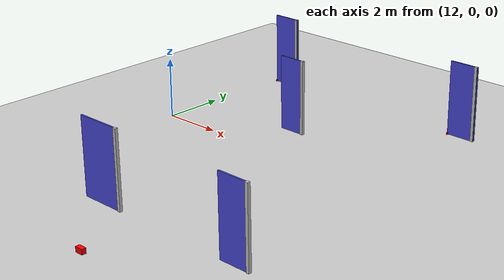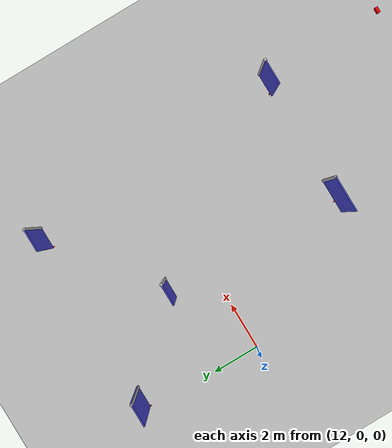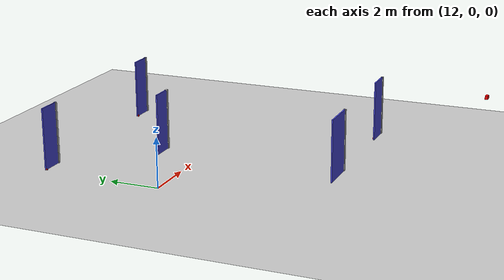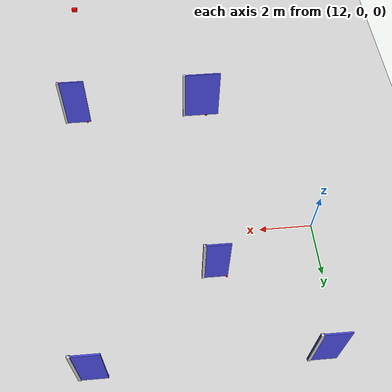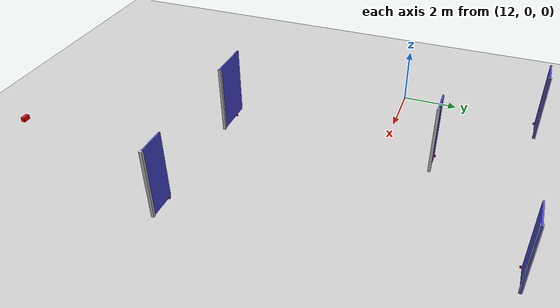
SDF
<sdf version="1.7">
 <world name="default">
  <model name="ground_plane">
   <static>1</static>
   <link name="link">
    <collision name="collision">
     <geometry><plane><normal>0 0 1</normal><size>100 100</size></plane></geometry>
     <surface><friction><ode><mu>100</mu><mu2>50</mu2></ode></friction></surface>
    </collision>
    <visual name="visual">
     <cast_shadows>0</cast_shadows>
     <geometry><plane><normal>0 0 1</normal><size>100 100</size></plane></geometry>
     <material>
      <script><uri>file://media/materials/scripts/gazebo.material</uri><name>Gazebo/Grey</name></script>
     </material>
    </visual>
   </link>
  </model>
  <model name="door_6">
   <link name="door_frame">
    <pose>0.25 0 1.25 0 -0 0</pose>
    <kinematic>1</kinematic>
    <inertial>
     <inertia><ixx>1</ixx><ixy>0</ixy><ixz>0</ixz><iyy>1</iyy><iyz>0</iyz><izz>1</izz></inertia>
     <mass>1</mass>
    </inertial>
    <visual name="frame_visual">
     <geometry><box><size>0.1 0.1 2.5</size></box></geometry>
     <material>
      <ambient>0.7 0.7 0.7 1</ambient>
      <diffuse>0.8 0.8 0.8 1</diffuse>
      <shader type="pixel"><normal_map>__default__</normal_map></shader>
      <script><name>ModelPreview_1::door_frame::frame_visual_MATERIAL_</name><uri>__default__</uri></script>
      <specular>0 0 0 1</specular>
      <emissive>0 0 0 1</emissive>
     </material>
    </visual>
    <collision name="frame_collision">
     <geometry><box><size>0.1 0.1 2.5</size></box></geometry>
     <surface>
      <friction>
       <ode><mu>1</mu><mu2>1</mu2><fdir1>0 0 0</fdir1><slip1>0</slip1><slip2>0</slip2></ode>
       <torsional>
        <coefficient>1</coefficient>
        <patch_radius>0</patch_radius>
        <surface_radius>0</surface_radius>
        <use_patch_radius>1</use_patch_radius>
        <ode><slip>0</slip></ode>
       </torsional>
      </friction>
      <bounce><restitution_coefficient>0</restitution_coefficient><threshold>1e+06</threshold></bounce>
      <contact>
       <collide_without_contact>0</collide_without_contact>
       <collide_without_contact_bitmask>1</collide_without_contact_bitmask>
       <collide_bitmask>1</collide_bitmask>
       <ode>
        <soft_cfm>0</soft_cfm>
        <soft_erp>0.2</soft_erp>
        <kp>1e+13</kp>
        <kd>1</kd>
        <max_vel>0.01</max_vel>
        <min_depth>0</min_depth>
       </ode>
       <bullet>
        <split_impulse>1</split_impulse>
        <split_impulse_penetration_threshold>-0.01</split_impulse_penetration_threshold>
        <soft_cfm>0</soft_cfm>
        <soft_erp>0.2</soft_erp>
        <kp>1e+13</kp>
        <kd>1</kd>
       </bullet>
      </contact>
     </surface>
    </collision>
   </link>
   <link name="door">
    <kinematic>1</kinematic>
    <pose>-0.259338 0 1.25 0 -0 0</pose>
    <inertial>
     <inertia><ixx>1.07451</ixx><ixy>0</ixy><ixz>0</ixz><iyy>1.25679</iyy><iyz>0</iyz><izz>0.18314</izz></inertia>
     <mass>2.06224</mass>
    </inertial>
    <visual name="door_visual">
     <geometry><box><size>1.0311 0.05 2.5</size></box></geometry>
     <material>
      <ambient>0.2 0.2 0.8 1</ambient>
      <diffuse>0.3 0.3 0.9 1</diffuse>
      <shader type="pixel"/>
      <script><name>ModelPreview_1::door::door_visual_MATERIAL_</name><uri>__default__</uri></script>
     </material>
    </visual>
    <collision name="door_collision">
     <geometry><box><size>1.0311 0.05 2.5</size></box></geometry>
     <surface>
      <friction>
       <ode><mu>1</mu><mu2>1</mu2><fdir1>0 0 0</fdir1><slip1>0</slip1><slip2>0</slip2></ode>
       <torsional>
        <coefficient>1</coefficient>
        <patch_radius>0</patch_radius>
        <surface_radius>0</surface_radius>
        <use_patch_radius>1</use_patch_radius>
        <ode><slip>0</slip></ode>
       </torsional>
      </friction>
      <bounce><restitution_coefficient>0</restitution_coefficient><threshold>1e+06</threshold></bounce>
      <contact>
       <collide_without_contact>0</collide_without_contact>
       <collide_without_contact_bitmask>1</collide_without_contact_bitmask>
       <collide_bitmask>1</collide_bitmask>
       <ode>
        <soft_cfm>0</soft_cfm>
        <soft_erp>0.2</soft_erp>
        <kp>1e+13</kp>
        <kd>1</kd>
        <max_vel>0.01</max_vel>
        <min_depth>0</min_depth>
       </ode>
       <bullet>
        <split_impulse>1</split_impulse>
        <split_impulse_penetration_threshold>-0.01</split_impulse_penetration_threshold>
        <soft_cfm>0</soft_cfm>
        <soft_erp>0.2</soft_erp>
        <kp>1e+13</kp>
        <kd>1</kd>
       </bullet>
      </contact>
     </surface>
    </collision>
   </link>
   <joint name="door_joint" type="prismatic">
    <parent>door_frame</parent>
    <child>door</child>
    <axis>
     <xyz>1 0 0</xyz>
     <limit><lower>0</lower><upper>2</upper><effort>-1</effort><velocity>-1</velocity></limit>
     <dynamics>
      <spring_reference>0</spring_reference>
      <spring_stiffness>0</spring_stiffness>
      <damping>0</damping>
      <friction>0</friction>
     </dynamics>
    </axis>
    <physics>
     <ode><limit><cfm>0</cfm><erp>0.2</erp></limit><suspension><cfm>0</cfm><erp>0.2</erp></suspension></ode>
    </physics>
   </joint>
   <static>0</static>
   <plugin name="door_control_plugin" filename="libdoor_control_plugin.so">
    <door_joint>door_joint</door_joint>
    <speed>1.0</speed>
    <open_target>1.0</open_target>
    <close_target>0.0</close_target>
   </plugin>
   <pose>21.1999 -5.82713 0 0 -0 0</pose>
  </model>
  <model name="door_5">
   <link name="door_frame">
    <pose>0.25 0 1.25 0 -0 0</pose>
    <kinematic>1</kinematic>
    <inertial>
     <inertia><ixx>1</ixx><ixy>0</ixy><ixz>0</ixz><iyy>1</iyy><iyz>0</iyz><izz>1</izz></inertia>
     <mass>1</mass>
    </inertial>
    <visual name="frame_visual">
     <geometry><box><size>0.1 0.1 2.5</size></box></geometry>
     <material>
      <ambient>0.7 0.7 0.7 1</ambient>
      <diffuse>0.8 0.8 0.8 1</diffuse>
      <shader type="pixel"><normal_map>__default__</normal_map></shader>
      <script><name>ModelPreview_1::door_frame::frame_visual_MATERIAL_</name><uri>__default__</uri></script>
      <specular>0 0 0 1</specular>
      <emissive>0 0 0 1</emissive>
     </material>
    </visual>
    <collision name="frame_collision">
     <geometry><box><size>0.1 0.1 2.5</size></box></geometry>
     <surface>
      <friction>
       <ode><mu>1</mu><mu2>1</mu2><fdir1>0 0 0</fdir1><slip1>0</slip1><slip2>0</slip2></ode>
       <torsional>
        <coefficient>1</coefficient>
        <patch_radius>0</patch_radius>
        <surface_radius>0</surface_radius>
        <use_patch_radius>1</use_patch_radius>
        <ode><slip>0</slip></ode>
       </torsional>
      </friction>
      <bounce><restitution_coefficient>0</restitution_coefficient><threshold>1e+06</threshold></bounce>
      <contact>
       <collide_without_contact>0</collide_without_contact>
       <collide_without_contact_bitmask>1</collide_without_contact_bitmask>
       <collide_bitmask>1</collide_bitmask>
       <ode>
        <soft_cfm>0</soft_cfm>
        <soft_erp>0.2</soft_erp>
        <kp>1e+13</kp>
        <kd>1</kd>
        <max_vel>0.01</max_vel>
        <min_depth>0</min_depth>
       </ode>
       <bullet>
        <split_impulse>1</split_impulse>
        <split_impulse_penetration_threshold>-0.01</split_impulse_penetration_threshold>
        <soft_cfm>0</soft_cfm>
        <soft_erp>0.2</soft_erp>
        <kp>1e+13</kp>
        <kd>1</kd>
       </bullet>
      </contact>
     </surface>
    </collision>
   </link>
   <link name="door">
    <kinematic>1</kinematic>
    <pose>-0.486434 0 1.25 0 -0 0</pose>
    <inertial>
     <inertia><ixx>1.55156</ixx><ixy>0</ixy><ixz>0</ixz><iyy>2.10104</iyy><iyz>0</iyz><izz>0.550719</izz></inertia>
     <mass>2.9778</mass>
    </inertial>
    <visual name="door_visual">
     <geometry><box><size>1.48889 0.05 2.5</size></box></geometry>
     <material>
      <ambient>0.2 0.2 0.8 1</ambient>
      <diffuse>0.3 0.3 0.9 1</diffuse>
      <shader type="pixel"/>
      <script><name>ModelPreview_1::door::door_visual_MATERIAL_</name><uri>__default__</uri></script>
     </material>
    </visual>
    <collision name="door_collision">
     <geometry><box><size>1.48889 0.05 2.5</size></box></geometry>
     <surface>
      <friction>
       <ode><mu>1</mu><mu2>1</mu2><fdir1>0 0 0</fdir1><slip1>0</slip1><slip2>0</slip2></ode>
       <torsional>
        <coefficient>1</coefficient>
        <patch_radius>0</patch_radius>
        <surface_radius>0</surface_radius>
        <use_patch_radius>1</use_patch_radius>
        <ode><slip>0</slip></ode>
       </torsional>
      </friction>
      <bounce><restitution_coefficient>0</restitution_coefficient><threshold>1e+06</threshold></bounce>
      <contact>
       <collide_without_contact>0</collide_without_contact>
       <collide_without_contact_bitmask>1</collide_without_contact_bitmask>
       <collide_bitmask>1</collide_bitmask>
       <ode>
        <soft_cfm>0</soft_cfm>
        <soft_erp>0.2</soft_erp>
        <kp>1e+13</kp>
        <kd>1</kd>
        <max_vel>0.01</max_vel>
        <min_depth>0</min_depth>
       </ode>
       <bullet>
        <split_impulse>1</split_impulse>
        <split_impulse_penetration_threshold>-0.01</split_impulse_penetration_threshold>
        <soft_cfm>0</soft_cfm>
        <soft_erp>0.2</soft_erp>
        <kp>1e+13</kp>
        <kd>1</kd>
       </bullet>
      </contact>
     </surface>
    </collision>
   </link>
   <joint name="door_joint" type="prismatic">
    <parent>door_frame</parent>
    <child>door</child>
    <axis>
     <xyz>1 0 0</xyz>
     <limit><lower>0</lower><upper>2</upper><effort>-1</effort><velocity>-1</velocity></limit>
     <dynamics>
      <spring_reference>0</spring_reference>
      <spring_stiffness>0</spring_stiffness>
      <damping>0</damping>
      <friction>0</friction>
     </dynamics>
    </axis>
    <physics>
     <ode><limit><cfm>0</cfm><erp>0.2</erp></limit><suspension><cfm>0</cfm><erp>0.2</erp></suspension></ode>
    </physics>
   </joint>
   <static>0</static>
   <plugin name="door_control_plugin" filename="libdoor_control_plugin.so">
    <door_joint>door_joint</door_joint>
    <speed>1.0</speed>
    <open_target>1.5</open_target>
    <close_target>0.0</close_target>
   </plugin>
   <pose>16.1524 -5.82237 0 0 -0 0</pose>
  </model>
  <model name="door_12">
   <link name="door_frame">
    <pose>0.25 0 1.25 0 -0 0</pose>
    <kinematic>1</kinematic>
    <inertial>
     <inertia><ixx>1</ixx><ixy>0</ixy><ixz>0</ixz><iyy>1</iyy><iyz>0</iyz><izz>1</izz></inertia>
     <mass>1</mass>
    </inertial>
    <visual name="frame_visual">
     <geometry><box><size>0.1 0.1 2.5</size></box></geometry>
     <material>
      <ambient>0.7 0.7 0.7 1</ambient>
      <diffuse>0.8 0.8 0.8 1</diffuse>
      <shader type="pixel"><normal_map>__default__</normal_map></shader>
      <script><name>ModelPreview_1::door_frame::frame_visual_MATERIAL_</name><uri>__default__</uri></script>
      <specular>0 0 0 1</specular>
      <emissive>0 0 0 1</emissive>
     </material>
    </visual>
    <collision name="frame_collision">
     <geometry><box><size>0.1 0.1 2.5</size></box></geometry>
     <surface>
      <friction>
       <ode><mu>1</mu><mu2>1</mu2><fdir1>0 0 0</fdir1><slip1>0</slip1><slip2>0</slip2></ode>
       <torsional>
        <coefficient>1</coefficient>
        <patch_radius>0</patch_radius>
        <surface_radius>0</surface_radius>
        <use_patch_radius>1</use_patch_radius>
        <ode><slip>0</slip></ode>
       </torsional>
      </friction>
      <bounce><restitution_coefficient>0</restitution_coefficient><threshold>1e+06</threshold></bounce>
      <contact>
       <collide_without_contact>0</collide_without_contact>
       <collide_without_contact_bitmask>1</collide_without_contact_bitmask>
       <collide_bitmask>1</collide_bitmask>
       <ode>
        <soft_cfm>0</soft_cfm>
        <soft_erp>0.2</soft_erp>
        <kp>1e+13</kp>
        <kd>1</kd>
        <max_vel>0.01</max_vel>
        <min_depth>0</min_depth>
       </ode>
       <bullet>
        <split_impulse>1</split_impulse>
        <split_impulse_penetration_threshold>-0.01</split_impulse_penetration_threshold>
        <soft_cfm>0</soft_cfm>
        <soft_erp>0.2</soft_erp>
        <kp>1e+13</kp>
        <kd>1</kd>
       </bullet>
      </contact>
     </surface>
    </collision>
   </link>
   <link name="door">
    <kinematic>1</kinematic>
    <pose>-0.194393 0 1.25 0 -0 0</pose>
    <inertial>
     <inertia>
      <ixx>0.934843</ixx>
      <ixy>0</ixy>
      <ixz>0</ixz>
      <iyy>1.05479</iyy>
      <iyz>0</iyz>
      <izz>0.120699</izz>
     </inertia>
     <mass>1.79418</mass>
    </inertial>
    <visual name="door_visual">
     <geometry><box><size>1 0.05 2.5</size></box></geometry>
     <material>
      <ambient>0.2 0.2 0.8 1</ambient>
      <diffuse>0.3 0.3 0.9 1</diffuse>
      <shader type="pixel"><normal_map>__default__</normal_map></shader>
      <script><name>ModelPreview_1::door::door_visual_MATERIAL_</name><uri>__default__</uri></script>
      <specular>0 0 0 1</specular>
      <emissive>0 0 0 1</emissive>
     </material>
    </visual>
    <collision name="door_collision">
     <geometry><box><size>1 0.05 2.5</size></box></geometry>
     <surface>
      <friction>
       <ode><mu>1</mu><mu2>1</mu2><fdir1>0 0 0</fdir1><slip1>0</slip1><slip2>0</slip2></ode>
       <torsional>
        <coefficient>1</coefficient>
        <patch_radius>0</patch_radius>
        <surface_radius>0</surface_radius>
        <use_patch_radius>1</use_patch_radius>
        <ode><slip>0</slip></ode>
       </torsional>
      </friction>
      <bounce><restitution_coefficient>0</restitution_coefficient><threshold>1e+06</threshold></bounce>
      <contact>
       <collide_without_contact>0</collide_without_contact>
       <collide_without_contact_bitmask>1</collide_without_contact_bitmask>
       <collide_bitmask>1</collide_bitmask>
       <ode>
        <soft_cfm>0</soft_cfm>
        <soft_erp>0.2</soft_erp>
        <kp>1e+13</kp>
        <kd>1</kd>
        <max_vel>0.01</max_vel>
        <min_depth>0</min_depth>
       </ode>
       <bullet>
        <split_impulse>1</split_impulse>
        <split_impulse_penetration_threshold>-0.01</split_impulse_penetration_threshold>
        <soft_cfm>0</soft_cfm>
        <soft_erp>0.2</soft_erp>
        <kp>1e+13</kp>
        <kd>1</kd>
       </bullet>
      </contact>
     </surface>
    </collision>
   </link>
   <joint name="door_joint" type="prismatic">
    <parent>door_frame</parent>
    <child>door</child>
    <axis>
     <xyz>1 0 0</xyz>
     <limit><lower>0</lower><upper>2</upper><effort>-1</effort><velocity>-1</velocity></limit>
     <dynamics>
      <spring_reference>0</spring_reference>
      <spring_stiffness>0</spring_stiffness>
      <damping>0</damping>
      <friction>0</friction>
     </dynamics>
    </axis>
    <physics>
     <ode><limit><cfm>0</cfm><erp>0.2</erp></limit><suspension><cfm>0</cfm><erp>0.2</erp></suspension></ode>
    </physics>
   </joint>
   <static>0</static>
   <plugin name="door_control_plugin" filename="libdoor_control_plugin.so">
    <door_joint>door_joint</door_joint>
    <speed>1.0</speed>
    <open_target>1.0</open_target>
    <close_target>0.0</close_target>
   </plugin>
   <pose>20.4352 5.02581 0 0 -0 0</pose>
  </model>
  <model name="door_13">
   <link name="door_frame">
    <pose>0.25 0 1.25 0 -0 0</pose>
    <kinematic>1</kinematic>
    <inertial>
     <inertia><ixx>1</ixx><ixy>0</ixy><ixz>0</ixz><iyy>1</iyy><iyz>0</iyz><izz>1</izz></inertia>
     <mass>1</mass>
    </inertial>
    <visual name="frame_visual">
     <geometry><box><size>0.1 0.1 2.5</size></box></geometry>
     <material>
      <ambient>0.7 0.7 0.7 1</ambient>
      <diffuse>0.8 0.8 0.8 1</diffuse>
      <shader type="pixel"><normal_map>__default__</normal_map></shader>
      <script><name>ModelPreview_1::door_frame::frame_visual_MATERIAL_</name><uri>__default__</uri></script>
      <specular>0 0 0 1</specular>
      <emissive>0 0 0 1</emissive>
     </material>
    </visual>
    <collision name="frame_collision">
     <geometry><box><size>0.1 0.1 2.5</size></box></geometry>
     <surface>
      <friction>
       <ode><mu>1</mu><mu2>1</mu2><fdir1>0 0 0</fdir1><slip1>0</slip1><slip2>0</slip2></ode>
       <torsional>
        <coefficient>1</coefficient>
        <patch_radius>0</patch_radius>
        <surface_radius>0</surface_radius>
        <use_patch_radius>1</use_patch_radius>
        <ode><slip>0</slip></ode>
       </torsional>
      </friction>
      <bounce><restitution_coefficient>0</restitution_coefficient><threshold>1e+06</threshold></bounce>
      <contact>
       <collide_without_contact>0</collide_without_contact>
       <collide_without_contact_bitmask>1</collide_without_contact_bitmask>
       <collide_bitmask>1</collide_bitmask>
       <ode>
        <soft_cfm>0</soft_cfm>
        <soft_erp>0.2</soft_erp>
        <kp>1e+13</kp>
        <kd>1</kd>
        <max_vel>0.01</max_vel>
        <min_depth>0</min_depth>
       </ode>
       <bullet>
        <split_impulse>1</split_impulse>
        <split_impulse_penetration_threshold>-0.01</split_impulse_penetration_threshold>
        <soft_cfm>0</soft_cfm>
        <soft_erp>0.2</soft_erp>
        <kp>1e+13</kp>
        <kd>1</kd>
       </bullet>
      </contact>
     </surface>
    </collision>
   </link>
   <link name="door">
    <kinematic>1</kinematic>
    <pose>-0.194393 0 1.25 0 -0 0</pose>
    <inertial>
     <inertia>
      <ixx>0.934843</ixx>
      <ixy>0</ixy>
      <ixz>0</ixz>
      <iyy>1.05479</iyy>
      <iyz>0</iyz>
      <izz>0.120699</izz>
     </inertia>
     <mass>1.79418</mass>
    </inertial>
    <visual name="door_visual">
     <geometry><box><size>1 0.05 2.5</size></box></geometry>
     <material>
      <ambient>0.2 0.2 0.8 1</ambient>
      <diffuse>0.3 0.3 0.9 1</diffuse>
      <shader type="pixel"><normal_map>__default__</normal_map></shader>
      <script><name>ModelPreview_1::door::door_visual_MATERIAL_</name><uri>__default__</uri></script>
      <specular>0 0 0 1</specular>
      <emissive>0 0 0 1</emissive>
     </material>
    </visual>
    <collision name="door_collision">
     <geometry><box><size>1 0.05 2.5</size></box></geometry>
     <surface>
      <friction>
       <ode><mu>1</mu><mu2>1</mu2><fdir1>0 0 0</fdir1><slip1>0</slip1><slip2>0</slip2></ode>
       <torsional>
        <coefficient>1</coefficient>
        <patch_radius>0</patch_radius>
        <surface_radius>0</surface_radius>
        <use_patch_radius>1</use_patch_radius>
        <ode><slip>0</slip></ode>
       </torsional>
      </friction>
      <bounce><restitution_coefficient>0</restitution_coefficient><threshold>1e+06</threshold></bounce>
      <contact>
       <collide_without_contact>0</collide_without_contact>
       <collide_without_contact_bitmask>1</collide_without_contact_bitmask>
       <collide_bitmask>1</collide_bitmask>
       <ode>
        <soft_cfm>0</soft_cfm>
        <soft_erp>0.2</soft_erp>
        <kp>1e+13</kp>
        <kd>1</kd>
        <max_vel>0.01</max_vel>
        <min_depth>0</min_depth>
       </ode>
       <bullet>
        <split_impulse>1</split_impulse>
        <split_impulse_penetration_threshold>-0.01</split_impulse_penetration_threshold>
        <soft_cfm>0</soft_cfm>
        <soft_erp>0.2</soft_erp>
        <kp>1e+13</kp>
        <kd>1</kd>
       </bullet>
      </contact>
     </surface>
    </collision>
   </link>
   <joint name="door_joint" type="prismatic">
    <parent>door_frame</parent>
    <child>door</child>
    <axis>
     <xyz>1 0 0</xyz>
     <limit><lower>0</lower><upper>2</upper><effort>-1</effort><velocity>-1</velocity></limit>
     <dynamics>
      <spring_reference>0</spring_reference>
      <spring_stiffness>0</spring_stiffness>
      <damping>0</damping>
      <friction>0</friction>
     </dynamics>
    </axis>
    <physics>
     <ode><limit><cfm>0</cfm><erp>0.2</erp></limit><suspension><cfm>0</cfm><erp>0.2</erp></suspension></ode>
    </physics>
   </joint>
   <static>0</static>
   <plugin name="door_control_plugin" filename="libdoor_control_plugin.so">
    <door_joint>door_joint</door_joint>
    <speed>1.0</speed>
    <open_target>1.0</open_target>
    <close_target>0.0</close_target>
   </plugin>
   <pose>12.8554 4.98579 0 0 -0 0</pose>
  </model>
  <model name="door_14">
   <link name="door_frame">
    <pose>0.25 0 1.25 0 -0 0</pose>
    <kinematic>1</kinematic>
    <inertial>
     <inertia><ixx>1</ixx><ixy>0</ixy><ixz>0</ixz><iyy>1</iyy><iyz>0</iyz><izz>1</izz></inertia>
     <mass>1</mass>
    </inertial>
    <visual name="frame_visual">
     <geometry><box><size>0.1 0.1 2.5</size></box></geometry>
     <material>
      <ambient>0.7 0.7 0.7 1</ambient>
      <diffuse>0.8 0.8 0.8 1</diffuse>
      <shader type="pixel"><normal_map>__default__</normal_map></shader>
      <script><name>ModelPreview_1::door_frame::frame_visual_MATERIAL_</name><uri>__default__</uri></script>
      <specular>0 0 0 1</specular>
      <emissive>0 0 0 1</emissive>
     </material>
    </visual>
    <collision name="frame_collision">
     <geometry><box><size>0.1 0.1 2.5</size></box></geometry>
     <surface>
      <friction>
       <ode><mu>1</mu><mu2>1</mu2><fdir1>0 0 0</fdir1><slip1>0</slip1><slip2>0</slip2></ode>
       <torsional>
        <coefficient>1</coefficient>
        <patch_radius>0</patch_radius>
        <surface_radius>0</surface_radius>
        <use_patch_radius>1</use_patch_radius>
        <ode><slip>0</slip></ode>
       </torsional>
      </friction>
      <bounce><restitution_coefficient>0</restitution_coefficient><threshold>1e+06</threshold></bounce>
      <contact>
       <collide_without_contact>0</collide_without_contact>
       <collide_without_contact_bitmask>1</collide_without_contact_bitmask>
       <collide_bitmask>1</collide_bitmask>
       <ode>
        <soft_cfm>0</soft_cfm>
        <soft_erp>0.2</soft_erp>
        <kp>1e+13</kp>
        <kd>1</kd>
        <max_vel>0.01</max_vel>
        <min_depth>0</min_depth>
       </ode>
       <bullet>
        <split_impulse>1</split_impulse>
        <split_impulse_penetration_threshold>-0.01</split_impulse_penetration_threshold>
        <soft_cfm>0</soft_cfm>
        <soft_erp>0.2</soft_erp>
        <kp>1e+13</kp>
        <kd>1</kd>
       </bullet>
      </contact>
     </surface>
    </collision>
   </link>
   <link name="door">
    <kinematic>1</kinematic>
    <pose>-0.194393 0 1.25 0 -0 0</pose>
    <inertial>
     <inertia>
      <ixx>0.934843</ixx>
      <ixy>0</ixy>
      <ixz>0</ixz>
      <iyy>1.05479</iyy>
      <iyz>0</iyz>
      <izz>0.120699</izz>
     </inertia>
     <mass>1.79418</mass>
    </inertial>
    <visual name="door_visual">
     <geometry><box><size>0.897089 0.05 2.5</size></box></geometry>
     <material>
      <ambient>0.2 0.2 0.8 1</ambient>
      <diffuse>0.3 0.3 0.9 1</diffuse>
      <shader type="pixel"/>
      <script><name>ModelPreview_1::door::door_visual_MATERIAL_</name><uri>__default__</uri></script>
     </material>
    </visual>
    <collision name="door_collision">
     <geometry><box><size>0.897089 0.05 2.5</size></box></geometry>
     <surface>
      <friction>
       <ode><mu>1</mu><mu2>1</mu2><fdir1>0 0 0</fdir1><slip1>0</slip1><slip2>0</slip2></ode>
       <torsional>
        <coefficient>1</coefficient>
        <patch_radius>0</patch_radius>
        <surface_radius>0</surface_radius>
        <use_patch_radius>1</use_patch_radius>
        <ode><slip>0</slip></ode>
       </torsional>
      </friction>
      <bounce><restitution_coefficient>0</restitution_coefficient><threshold>1e+06</threshold></bounce>
      <contact>
       <collide_without_contact>0</collide_without_contact>
       <collide_without_contact_bitmask>1</collide_without_contact_bitmask>
       <collide_bitmask>1</collide_bitmask>
       <ode>
        <soft_cfm>0</soft_cfm>
        <soft_erp>0.2</soft_erp>
        <kp>1e+13</kp>
        <kd>1</kd>
        <max_vel>0.01</max_vel>
        <min_depth>0</min_depth>
       </ode>
       <bullet>
        <split_impulse>1</split_impulse>
        <split_impulse_penetration_threshold>-0.01</split_impulse_penetration_threshold>
        <soft_cfm>0</soft_cfm>
        <soft_erp>0.2</soft_erp>
        <kp>1e+13</kp>
        <kd>1</kd>
       </bullet>
      </contact>
     </surface>
    </collision>
   </link>
   <joint name="door_joint" type="prismatic">
    <parent>door_frame</parent>
    <child>door</child>
    <axis>
     <xyz>1 0 0</xyz>
     <limit><lower>0</lower><upper>2</upper><effort>-1</effort><velocity>-1</velocity></limit>
     <dynamics>
      <spring_reference>0</spring_reference>
      <spring_stiffness>0</spring_stiffness>
      <damping>0</damping>
      <friction>0</friction>
     </dynamics>
    </axis>
    <physics>
     <ode><limit><cfm>0</cfm><erp>0.2</erp></limit><suspension><cfm>0</cfm><erp>0.2</erp></suspension></ode>
    </physics>
   </joint>
   <static>0</static>
   <plugin name="door_control_plugin" filename="libdoor_control_plugin.so">
    <door_joint>door_joint</door_joint>
    <speed>1.0</speed>
    <open_target>1.0</open_target>
    <close_target>0.0</close_target>
   </plugin>
   <pose>16.0712 1.75766 0 0 -0 0</pose>
  </model>
  <model name="Lidar_6">
   <link name="link_1">
    <inertial>
     <mass>0.00014111</mass>
     <inertia><ixx>7e-08</ixx><ixy>0</ixy><ixz>0</ixz><iyy>7e-08</iyy><iyz>0</iyz><izz>6e-08</izz></inertia>
    </inertial>
    <visual name="visual">
     <geometry><box><size>0.048286 0.048861 0.059852</size></box></geometry>
     <material>
      <lighting>1</lighting>
      <script><uri>file://media/materials/scripts/gazebo.material</uri><name>Gazebo/Grey</name></script>
      <shader type="pixel"><normal_map>__default__</normal_map></shader>
      <ambient>1 0 0 1</ambient>
      <diffuse>0.7 0.7 0.7 1</diffuse>
      <specular>0.01 0.01 0.01 1</specular>
      <emissive>0 0 0 1</emissive>
     </material>
    </visual>
    <collision name="collision">
     <geometry><box><size>0.048286 0.048861 0.059852</size></box></geometry>
     <surface>
      <friction>
       <ode><mu>1</mu><mu2>1</mu2><fdir1>0 0 0</fdir1><slip1>0</slip1><slip2>0</slip2></ode>
       <torsional>
        <coefficient>1</coefficient>
        <patch_radius>0</patch_radius>
        <surface_radius>0</surface_radius>
        <use_patch_radius>1</use_patch_radius>
        <ode><slip>0</slip></ode>
       </torsional>
      </friction>
      <bounce><restitution_coefficient>0</restitution_coefficient><threshold>1e+06</threshold></bounce>
      <contact>
       <collide_without_contact>0</collide_without_contact>
       <collide_without_contact_bitmask>1</collide_without_contact_bitmask>
       <collide_bitmask>1</collide_bitmask>
       <ode>
        <soft_cfm>0</soft_cfm>
        <soft_erp>0.2</soft_erp>
        <kp>1e+13</kp>
        <kd>1</kd>
        <max_vel>0.01</max_vel>
        <min_depth>0</min_depth>
       </ode>
       <bullet>
        <split_impulse>1</split_impulse>
        <split_impulse_penetration_threshold>-0.01</split_impulse_penetration_threshold>
        <soft_cfm>0</soft_cfm>
        <soft_erp>0.2</soft_erp>
        <kp>1e+13</kp>
        <kd>1</kd>
       </bullet>
      </contact>
     </surface>
    </collision>
   </link>
   <static>0</static>
   <pose>20.5529 -5.77206 0.029922 1.4e-05 0.000142 0.1736</pose>
  </model>
  <model name="Lidar_12">
   <link name="link_1">
    <inertial>
     <mass>0.00014111</mass>
     <inertia><ixx>7e-08</ixx><ixy>0</ixy><ixz>0</ixz><iyy>7e-08</iyy><iyz>0</iyz><izz>6e-08</izz></inertia>
    </inertial>
    <visual name="visual">
     <geometry><box><size>0.048286 0.048861 0.059852</size></box></geometry>
     <material>
      <lighting>1</lighting>
      <script><uri>file://media/materials/scripts/gazebo.material</uri><name>Gazebo/Grey</name></script>
      <shader type="pixel"><normal_map>__default__</normal_map></shader>
      <ambient>1 0 0 1</ambient>
      <diffuse>0.7 0.7 0.7 1</diffuse>
      <specular>0.01 0.01 0.01 1</specular>
      <emissive>0 0 0 1</emissive>
     </material>
    </visual>
    <collision name="collision">
     <geometry><box><size>0.048286 0.048861 0.059852</size></box></geometry>
     <surface>
      <friction>
       <ode><mu>1</mu><mu2>1</mu2><fdir1>0 0 0</fdir1><slip1>0</slip1><slip2>0</slip2></ode>
       <torsional>
        <coefficient>1</coefficient>
        <patch_radius>0</patch_radius>
        <surface_radius>0</surface_radius>
        <use_patch_radius>1</use_patch_radius>
        <ode><slip>0</slip></ode>
       </torsional>
      </friction>
      <bounce><restitution_coefficient>0</restitution_coefficient><threshold>1e+06</threshold></bounce>
      <contact>
       <collide_without_contact>0</collide_without_contact>
       <collide_without_contact_bitmask>1</collide_without_contact_bitmask>
       <collide_bitmask>1</collide_bitmask>
       <ode>
        <soft_cfm>0</soft_cfm>
        <soft_erp>0.2</soft_erp>
        <kp>1e+13</kp>
        <kd>1</kd>
        <max_vel>0.01</max_vel>
        <min_depth>0</min_depth>
       </ode>
       <bullet>
        <split_impulse>1</split_impulse>
        <split_impulse_penetration_threshold>-0.01</split_impulse_penetration_threshold>
        <soft_cfm>0</soft_cfm>
        <soft_erp>0.2</soft_erp>
        <kp>1e+13</kp>
        <kd>1</kd>
       </bullet>
      </contact>
     </surface>
    </collision>
   </link>
   <static>0</static>
   <pose>19.7713 4.96756 0.029922 0 0.000173 0.164716</pose>
  </model>
  <model name="Lidar_13">
   <link name="link_1">
    <inertial>
     <mass>0.00014111</mass>
     <inertia><ixx>7e-08</ixx><ixy>0</ixy><ixz>0</ixz><iyy>7e-08</iyy><iyz>0</iyz><izz>6e-08</izz></inertia>
    </inertial>
    <visual name="visual">
     <geometry><box><size>0.048286 0.048861 0.059852</size></box></geometry>
     <material>
      <lighting>1</lighting>
      <script><uri>file://media/materials/scripts/gazebo.material</uri><name>Gazebo/Grey</name></script>
      <shader type="pixel"><normal_map>__default__</normal_map></shader>
      <ambient>1 0 0 1</ambient>
      <diffuse>0.7 0.7 0.7 1</diffuse>
      <specular>0.01 0.01 0.01 1</specular>
      <emissive>0 0 0 1</emissive>
     </material>
    </visual>
    <collision name="collision">
     <geometry><box><size>0.048286 0.048861 0.059852</size></box></geometry>
     <surface>
      <friction>
       <ode><mu>1</mu><mu2>1</mu2><fdir1>0 0 0</fdir1><slip1>0</slip1><slip2>0</slip2></ode>
       <torsional>
        <coefficient>1</coefficient>
        <patch_radius>0</patch_radius>
        <surface_radius>0</surface_radius>
        <use_patch_radius>1</use_patch_radius>
        <ode><slip>0</slip></ode>
       </torsional>
      </friction>
      <bounce><restitution_coefficient>0</restitution_coefficient><threshold>1e+06</threshold></bounce>
      <contact>
       <collide_without_contact>0</collide_without_contact>
       <collide_without_contact_bitmask>1</collide_without_contact_bitmask>
       <collide_bitmask>1</collide_bitmask>
       <ode>
        <soft_cfm>0</soft_cfm>
        <soft_erp>0.2</soft_erp>
        <kp>1e+13</kp>
        <kd>1</kd>
        <max_vel>0.01</max_vel>
        <min_depth>0</min_depth>
       </ode>
       <bullet>
        <split_impulse>1</split_impulse>
        <split_impulse_penetration_threshold>-0.01</split_impulse_penetration_threshold>
        <soft_cfm>0</soft_cfm>
        <soft_erp>0.2</soft_erp>
        <kp>1e+13</kp>
        <kd>1</kd>
       </bullet>
      </contact>
     </surface>
    </collision>
   </link>
   <static>0</static>
   <pose>12.1846 4.93501 0.029924 -6.1e-05 0.000136 0.016165</pose>
  </model>
  <model name="Lidar_14">
   <link name="link_1">
    <inertial>
     <mass>0.00014111</mass>
     <inertia><ixx>7e-08</ixx><ixy>0</ixy><ixz>0</ixz><iyy>7e-08</iyy><iyz>0</iyz><izz>6e-08</izz></inertia>
    </inertial>
    <visual name="visual">
     <geometry><box><size>0.048286 0.048861 0.059852</size></box></geometry>
     <material>
      <lighting>1</lighting>
      <script><uri>file://media/materials/scripts/gazebo.material</uri><name>Gazebo/Grey</name></script>
      <shader type="pixel"><normal_map>__default__</normal_map></shader>
      <ambient>1 0 0 1</ambient>
      <diffuse>0.7 0.7 0.7 1</diffuse>
      <specular>0.01 0.01 0.01 1</specular>
      <emissive>0 0 0 1</emissive>
     </material>
    </visual>
    <collision name="collision">
     <geometry><box><size>0.048286 0.048861 0.059852</size></box></geometry>
     <surface>
      <friction>
       <ode><mu>1</mu><mu2>1</mu2><fdir1>0 0 0</fdir1><slip1>0</slip1><slip2>0</slip2></ode>
       <torsional>
        <coefficient>1</coefficient>
        <patch_radius>0</patch_radius>
        <surface_radius>0</surface_radius>
        <use_patch_radius>1</use_patch_radius>
        <ode><slip>0</slip></ode>
       </torsional>
      </friction>
      <bounce><restitution_coefficient>0</restitution_coefficient><threshold>1e+06</threshold></bounce>
      <contact>
       <collide_without_contact>0</collide_without_contact>
       <collide_without_contact_bitmask>1</collide_without_contact_bitmask>
       <collide_bitmask>1</collide_bitmask>
       <ode>
        <soft_cfm>0</soft_cfm>
        <soft_erp>0.2</soft_erp>
        <kp>1e+13</kp>
        <kd>1</kd>
        <max_vel>0.01</max_vel>
        <min_depth>0</min_depth>
       </ode>
       <bullet>
        <split_impulse>1</split_impulse>
        <split_impulse_penetration_threshold>-0.01</split_impulse_penetration_threshold>
        <soft_cfm>0</soft_cfm>
        <soft_erp>0.2</soft_erp>
        <kp>1e+13</kp>
        <kd>1</kd>
       </bullet>
      </contact>
     </surface>
    </collision>
   </link>
   <static>0</static>
   <pose>15.4611 1.80808 0.029921 -8.9e-05 0.00011 0.017491</pose>
  </model>
  <model name="Camera_7">
   <link name="link_1">
    <inertial>
     <mass>0.00014152</mass>
     <inertia><ixx>8.3e-07</ixx><ixy>0</ixy><ixz>0</ixz><iyy>4e-07</iyy><iyz>0</iyz><izz>7.7e-07</izz></inertia>
    </inertial>
    <gravity>0</gravity>
    <visual name="visual">
     <geometry><box><size>0.119276 0.225925 0.14044</size></box></geometry>
     <material>
      <lighting>1</lighting>
      <script><uri>file://media/materials/scripts/gazebo.material</uri><name>Gazebo/Grey</name></script>
      <shader type="pixel"><normal_map>__default__</normal_map></shader>
      <ambient>1 0 0 1</ambient>
      <diffuse>0.7 0.7 0.7 1</diffuse>
      <specular>0.01 0.01 0.01 1</specular>
      <emissive>0 0 0 1</emissive>
     </material>
    </visual>
    <collision name="collision">
     <geometry><box><size>0.119276 0.225925 0.14044</size></box></geometry>
     <surface>
      <friction>
       <ode><mu>1</mu><mu2>1</mu2><fdir1>0 0 0</fdir1><slip1>0</slip1><slip2>0</slip2></ode>
       <torsional>
        <coefficient>1</coefficient>
        <patch_radius>0</patch_radius>
        <surface_radius>0</surface_radius>
        <use_patch_radius>1</use_patch_radius>
        <ode><slip>0</slip></ode>
       </torsional>
      </friction>
      <bounce><restitution_coefficient>0</restitution_coefficient><threshold>1e+06</threshold></bounce>
      <contact>
       <collide_without_contact>0</collide_without_contact>
       <collide_without_contact_bitmask>1</collide_without_contact_bitmask>
       <collide_bitmask>1</collide_bitmask>
       <ode>
        <soft_cfm>0</soft_cfm>
        <soft_erp>0.2</soft_erp>
        <kp>1e+13</kp>
        <kd>1</kd>
        <max_vel>0.01</max_vel>
        <min_depth>0</min_depth>
       </ode>
       <bullet>
        <split_impulse>1</split_impulse>
        <split_impulse_penetration_threshold>-0.01</split_impulse_penetration_threshold>
        <soft_cfm>0</soft_cfm>
        <soft_erp>0.2</soft_erp>
        <kp>1e+13</kp>
        <kd>1</kd>
       </bullet>
      </contact>
     </surface>
    </collision>
    <sensor name="camera_sensor7" type="camera">
     <update_rate>30</update_rate>
     <camera>
      <horizontal_fov>2.5</horizontal_fov>
      <image><width>800</width><height>600</height><format>R8G8B8</format></image>
      <clip><near>0.1</near><far>100</far></clip>
      <distortion><k1>-0.3</k1><k2>0.1</k2><p1>0</p1><p2>0</p2></distortion>
     </camera>
     <plugin name="camera_plugin" filename="libcamera_plugin.so"/>
    </sensor>
   </link>
   <static>0</static>
   <pose>20.9036 -10.3899 2.25 0 -0 1.56149</pose>
  </model>
  <model name="Lidar_5">
   <link name="link_1">
    <inertial>
     <mass>0.00014111</mass>
     <inertia><ixx>7e-08</ixx><ixy>0</ixy><ixz>0</ixz><iyy>7e-08</iyy><iyz>0</iyz><izz>6e-08</izz></inertia>
    </inertial>
    <visual name="visual">
     <geometry><box><size>0.048286 0.048861 0.059852</size></box></geometry>
     <material>
      <lighting>1</lighting>
      <script><uri>file://media/materials/scripts/gazebo.material</uri><name>Gazebo/Grey</name></script>
      <shader type="pixel"><normal_map>__default__</normal_map></shader>
      <ambient>1 0 0 1</ambient>
      <diffuse>0.7 0.7 0.7 1</diffuse>
      <specular>0.01 0.01 0.01 1</specular>
      <emissive>0 0 0 1</emissive>
     </material>
    </visual>
    <collision name="collision">
     <geometry><box><size>0.048286 0.048861 0.059852</size></box></geometry>
     <surface>
      <friction>
       <ode><mu>1</mu><mu2>1</mu2><fdir1>0 0 0</fdir1><slip1>0</slip1><slip2>0</slip2></ode>
       <torsional>
        <coefficient>1</coefficient>
        <patch_radius>0</patch_radius>
        <surface_radius>0</surface_radius>
        <use_patch_radius>1</use_patch_radius>
        <ode><slip>0</slip></ode>
       </torsional>
      </friction>
      <bounce><restitution_coefficient>0</restitution_coefficient><threshold>1e+06</threshold></bounce>
      <contact>
       <collide_without_contact>0</collide_without_contact>
       <collide_without_contact_bitmask>1</collide_without_contact_bitmask>
       <collide_bitmask>1</collide_bitmask>
       <ode>
        <soft_cfm>0</soft_cfm>
        <soft_erp>0.2</soft_erp>
        <kp>1e+13</kp>
        <kd>1</kd>
        <max_vel>0.01</max_vel>
        <min_depth>0</min_depth>
       </ode>
       <bullet>
        <split_impulse>1</split_impulse>
        <split_impulse_penetration_threshold>-0.01</split_impulse_penetration_threshold>
        <soft_cfm>0</soft_cfm>
        <soft_erp>0.2</soft_erp>
        <kp>1e+13</kp>
        <kd>1</kd>
       </bullet>
      </contact>
     </surface>
    </collision>
   </link>
   <static>0</static>
   <pose>15.4512 -5.75862 0.029922 1.4e-05 0.000142 0.166962</pose>
  </model>
 </world>
</sdf>
